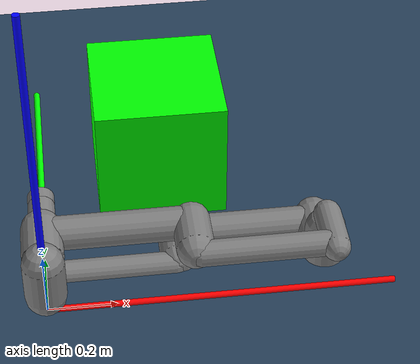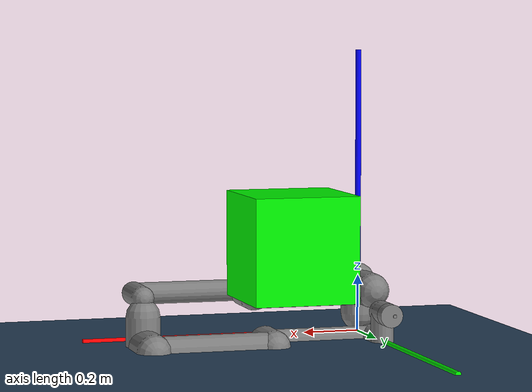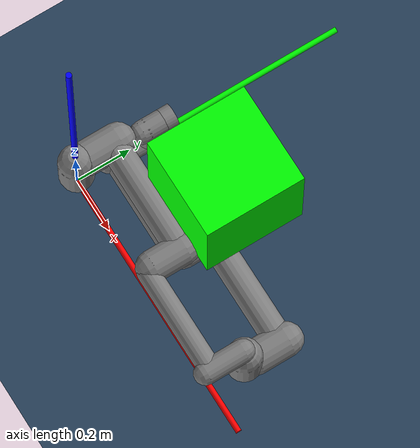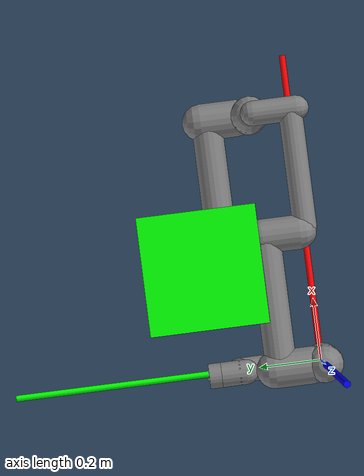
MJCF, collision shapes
<mujoco model="ur5e scene">
  <compiler angle="radian" meshdir="assets/" autolimits="true"/>
  <option timestep="0.01" impratio="20" tolerance="1e-10" iterations="10"/>
  <visual>
    <headlight diffuse="0.6 0.6 0.6" specular="0 0 0"/>
    <rgba haze="0.15 0.25 0.35 1"/>
  </visual>
  <statistic meansize="0.214793" extent="0.8" center="0.3 0 0.4"/>
  <default class="main">
    <default class="ur5e">
      <material shininess="0.25"/>
      <joint range="-6.28319 6.28319" armature="0.1" damping="200"/>
      <site size="0.001 0.005 0.005" group="4" rgba="0.5 0.5 0.5 0.3"/>
      <default class="GRIPPER">
        <joint damping="5"/>
      </default>
      <default class="visual">
        <geom type="mesh" contype="0" conaffinity="0" group="2"/>
      </default>
      <default class="collision">
        <geom type="capsule" group="3"/>
        <default class="eef_collision">
          <geom type="cylinder"/>
        </default>
      </default>
    </default>
  </default>
  <asset>
    <texture type="skybox" builtin="gradient" rgb1="0.3 0.5 0.7" rgb2="0 0 0" width="512" height="3072"/>
    <texture type="2d" name="groundplane" builtin="checker" mark="edge" rgb1="0.2 0.3 0.4" rgb2="0.1 0.2 0.3" markrgb="0.8 0.8 0.8" width="300" height="300"/>
    <material name="groundplane" texture="groundplane" texuniform="true" texrepeat="5 5" reflectance="0.2"/>
    <material name="black" class="ur5e" rgba="0.033 0.033 0.033 1"/>
    <material name="jointgray" class="ur5e" rgba="0.278 0.278 0.278 1"/>
    <material name="linkgray" class="ur5e" rgba="0.82 0.82 0.82 1"/>
    <material name="urblue" class="ur5e" rgba="0.49 0.678 0.8 1"/>
    <mesh name="base_0" file="base_0.obj"/>
    <mesh name="base_1" file="base_1.obj"/>
    <mesh name="shoulder_0" file="shoulder_0.obj"/>
    <mesh name="shoulder_1" file="shoulder_1.obj"/>
    <mesh name="shoulder_2" file="shoulder_2.obj"/>
    <mesh name="upperarm_0" file="upperarm_0.obj"/>
    <mesh name="upperarm_1" file="upperarm_1.obj"/>
    <mesh name="upperarm_2" file="upperarm_2.obj"/>
    <mesh name="upperarm_3" file="upperarm_3.obj"/>
    <mesh name="forearm_0" file="forearm_0.obj"/>
    <mesh name="forearm_1" file="forearm_1.obj"/>
    <mesh name="forearm_2" file="forearm_2.obj"/>
    <mesh name="forearm_3" file="forearm_3.obj"/>
    <mesh name="wrist1_0" file="wrist1_0.obj"/>
    <mesh name="wrist1_1" file="wrist1_1.obj"/>
    <mesh name="wrist1_2" file="wrist1_2.obj"/>
    <mesh name="wrist2_0" file="wrist2_0.obj"/>
    <mesh name="wrist2_1" file="wrist2_1.obj"/>
    <mesh name="wrist2_2" file="wrist2_2.obj"/>
    <mesh name="wrist3" file="wrist3.obj"/>
  </asset>
  <worldbody>
    <geom size="0.01 0.5" pos="0.5 0 0" quat="0.707107 0 -0.707107 0" type="cylinder" contype="0" conaffinity="0" group="2" rgba="1 0 0 1"/>
    <geom size="0.01 0.5" pos="0 0.5 0" quat="0.707107 0.707107 0 0" type="cylinder" contype="0" conaffinity="0" group="2" rgba="0 1 0 1"/>
    <geom size="0.01 0.5" pos="0 0 0.5" quat="0 1 0 0" type="cylinder" contype="0" conaffinity="0" group="2" rgba="0 0 1 1"/>
    <geom name="floor" size="0 0 0.05" type="plane" material="groundplane"/>
    <light pos="0.4 -0.2 5.5" dir="-0.072488 0.036244 -0.996711" cutoff="135"/>
    <light pos="0 0 1.5" dir="0 0 -1" directional="true"/>
    <light name="spotlight" target="wrist_1_link" pos="0 -1 2" dir="0 0 -1" mode="targetbodycom"/>
    <body name="blockL01" pos="0.35 0.35 0.35">
      <inertial pos="0 0 0" mass="0.2" diaginertia="0.001 0.001 0.001"/>
      <joint name="Obj1" type="free"/>
      <geom size="0.18 0.18 0.18" type="box" mass="0" rgba="0 1 0 0.5"/>
    </body>
    <body name="base" childclass="ur5e">
      <inertial pos="0 0 0" mass="4" diaginertia="0.00443333 0.00443333 0.0072"/>
      <geom class="visual" material="black" mesh="base_0"/>
      <geom class="visual" material="jointgray" mesh="base_1"/>
      <body name="shoulder_link" pos="0 0 0.163">
        <inertial pos="0 0.00193 -0.02561" mass="3.761" diaginertia="0.0102675 0.0102675 0.00666"/>
        <joint name="joint1" class="ur5e" pos="0 0 0" axis="0 0 1" range="-3.14159 3.14159"/>
        <geom class="visual" material="urblue" mesh="shoulder_0"/>
        <geom class="visual" material="black" mesh="shoulder_1"/>
        <geom class="visual" material="jointgray" mesh="shoulder_2"/>
        <geom class="collision" size="0.06 0.06" pos="0 0 -0.04"/>
        <body name="upper_arm_link" pos="0 0.138 0" quat="0.707107 0 0.707107 0">
          <inertial pos="0 -0.02464 0.2125" mass="8.058" diaginertia="0.133886 0.133886 0.0151074"/>
          <joint name="joint2" class="ur5e" pos="0 0 0" axis="0 1 0" range="-3.14159 3.14159"/>
          <geom class="visual" material="linkgray" mesh="upperarm_0"/>
          <geom class="visual" material="black" mesh="upperarm_1"/>
          <geom class="visual" material="jointgray" mesh="upperarm_2"/>
          <geom class="visual" material="urblue" mesh="upperarm_3"/>
          <geom class="collision" size="0.06 0.06" pos="0 -0.04 0" quat="0.707107 0.707107 0 0"/>
          <geom class="collision" size="0.05 0.2" pos="0 0 0.2"/>
          <body name="forearm_link" pos="0 -0.131 0.425">
            <inertial pos="0 0.0195 0.2422" mass="2.846" diaginertia="0.0311796 0.0311796 0.004095"/>
            <joint name="joint3" class="ur5e" pos="0 0 0" axis="0 1 0" range="-3.14159 3.14159"/>
            <geom class="visual" material="urblue" mesh="forearm_0"/>
            <geom class="visual" material="linkgray" mesh="forearm_1"/>
            <geom class="visual" material="black" mesh="forearm_2"/>
            <geom class="visual" material="jointgray" mesh="forearm_3"/>
            <geom class="collision" size="0.055 0.06" pos="0 0.08 0" quat="0.707107 0.707107 0 0"/>
            <geom class="collision" size="0.038 0.19" pos="0 0 0.2"/>
            <body name="wrist_1_link" pos="0 0 0.392" quat="0.707107 0 0.707107 0">
              <inertial pos="0 0 0" mass="1e-06" diaginertia="0.0025599 0.0025599 0.0021942"/>
              <joint name="joint4" class="ur5e" pos="0 0 0" axis="0 1 0" range="-3.14159 3.14159"/>
              <geom class="visual" material="black" mesh="wrist1_0"/>
              <geom class="visual" material="urblue" mesh="wrist1_1"/>
              <geom class="visual" material="jointgray" mesh="wrist1_2"/>
              <geom class="collision" size="0.04 0.07" pos="0 0.05 0" quat="0.707107 0.707107 0 0"/>
              <body name="ee_link1" pos="0 0.127 0">
                <inertial pos="0 -0.0018 0.01634" mass="1.37" diaginertia="1.66667e-08 1.66667e-08 1.66667e-08"/>
                <geom size="0.005 0.005 0.005" pos="-0.01 0 0" type="box"/>
                <body name="base2">
                  <inertial pos="0 0 0" mass="0" diaginertia="0.00443333 0.00443333 0.0072"/>
                  <geom class="visual" material="black" mesh="base_0"/>
                  <geom class="visual" material="jointgray" mesh="base_1"/>
                  <body name="shoulder_link2" pos="0 0 0.163">
                    <inertial pos="0 0.00193 -0.02561" mass="3.761" diaginertia="0.0102675 0.0102675 0.00666"/>
                    <joint name="joint5" class="ur5e" pos="0 0 0" axis="0 0 1" range="-3.14159 3.14159"/>
                    <geom class="visual" material="urblue" mesh="shoulder_0"/>
                    <geom class="visual" material="black" mesh="shoulder_1"/>
                    <geom class="visual" material="jointgray" mesh="shoulder_2"/>
                    <geom class="collision" size="0.06 0.06" pos="0 0 -0.04"/>
                    <body name="upper_arm_link2" pos="0 0.138 0" quat="0.707107 0 0.707107 0">
                      <inertial pos="0 -0.02464 0.2125" mass="8.058" diaginertia="0.133886 0.133886 0.0151074"/>
                      <joint name="joint6" class="ur5e" pos="0 0 0" axis="0 1 0" range="-3.14159 3.14159"/>
                      <geom class="visual" material="linkgray" mesh="upperarm_0"/>
                      <geom class="visual" material="black" mesh="upperarm_1"/>
                      <geom class="visual" material="jointgray" mesh="upperarm_2"/>
                      <geom class="visual" material="urblue" mesh="upperarm_3"/>
                      <geom class="collision" size="0.06 0.06" pos="0 -0.04 0" quat="0.707107 0.707107 0 0"/>
                      <geom class="collision" size="0.05 0.2" pos="0 0 0.2"/>
                      <body name="forearm_link2" pos="0 -0.131 0.425">
                        <inertial pos="0 0.0195 0.2422" mass="2.846" diaginertia="0.0311796 0.0311796 0.004095"/>
                        <joint name="joint7" class="ur5e" pos="0 0 0" axis="0 1 0" range="-3.14159 3.14159"/>
                        <geom class="visual" material="urblue" mesh="forearm_0"/>
                        <geom class="visual" material="linkgray" mesh="forearm_1"/>
                        <geom class="visual" material="black" mesh="forearm_2"/>
                        <geom class="visual" material="jointgray" mesh="forearm_3"/>
                        <geom class="collision" size="0.055 0.06" pos="0 0.08 0" quat="0.707107 0.707107 0 0"/>
                        <geom class="collision" size="0.038 0.19" pos="0 0 0.2"/>
                        <body name="wrist_1_link2" pos="0 0 0.392" quat="0.707107 0 0.707107 0">
                          <inertial pos="0 0 0" mass="1e-06" diaginertia="0.0025599 0.0025599 0.0021942"/>
                          <joint name="joint8" class="ur5e" pos="0 0 0" axis="0 1 0" range="-3.14159 3.14159"/>
                          <geom class="visual" material="black" mesh="wrist1_0"/>
                          <geom class="visual" material="urblue" mesh="wrist1_1"/>
                          <geom class="visual" material="jointgray" mesh="wrist1_2"/>
                          <geom class="collision" size="0.04 0.07" pos="0 0.05 0" quat="0.707107 0.707107 0 0"/>
                          <body name="wrist_2_link2" pos="0 0.127 0">
                            <inertial pos="0 -0.0018 0.01634" mass="1.37" diaginertia="0.0025599 0.0025599 0.0021942"/>
                            <joint name="joint9" class="ur5e" pos="0 0 0" axis="0 0 1" range="-3.14159 3.14159"/>
                            <geom class="visual" material="black" mesh="wrist2_0"/>
                            <geom class="visual" material="urblue" mesh="wrist2_1"/>
                            <geom class="visual" material="jointgray" mesh="wrist2_2"/>
                            <geom class="collision" size="0.04 0.06" pos="0 0 0.04"/>
                            <geom class="collision" size="0.04 0.04" pos="0 0.02 0.1" quat="0.707107 0.707107 0 0"/>
                            <body name="wrist_3_link2" pos="0 0 0.1">
                              <inertial pos="0 0.01634 0.0018" quat="0.707107 0 0 0.707107" mass="1.3" diaginertia="0.000132134 9.90863e-05 9.90863e-05"/>
                              <joint name="joint10" class="ur5e" pos="0 0 0" axis="0 1 0" range="-3.14159 3.14159"/>
                              <geom class="visual" material="linkgray" mesh="wrist3"/>
                              <geom class="eef_collision" size="0.04 0.02" pos="0 0.08 0" quat="0.707107 0.707107 0 0"/>
                              <body name="ee_link2" pos="0 0.0996 0" quat="0.707107 -0.707107 0 0">
                                <inertial pos="0 0 -0.001159" mass="0.365" diaginertia="1.66667e-08 1.66667e-08 1.66667e-08"/>
                                <geom size="0.005 0.005 0.005" pos="-0.01 0 0" type="box"/>
                              </body>
                            </body>
                          </body>
                        </body>
                      </body>
                    </body>
                  </body>
                </body>
              </body>
            </body>
          </body>
        </body>
      </body>
    </body>
  </worldbody>
  <actuator>
    <general name="actuator1" joint="joint1"/>
    <general name="actuator2" joint="joint2"/>
    <general name="actuator3" joint="joint3"/>
    <general name="actuator4" joint="joint4"/>
    <general name="actuator5" joint="joint5"/>
    <general name="actuator6" joint="joint6"/>
    <general name="actuator7" joint="joint7"/>
    <general name="actuator8" joint="joint8"/>
    <general name="actuator9" joint="joint9"/>
    <general name="actuator10" joint="joint10"/>
  </actuator>
</mujoco>
